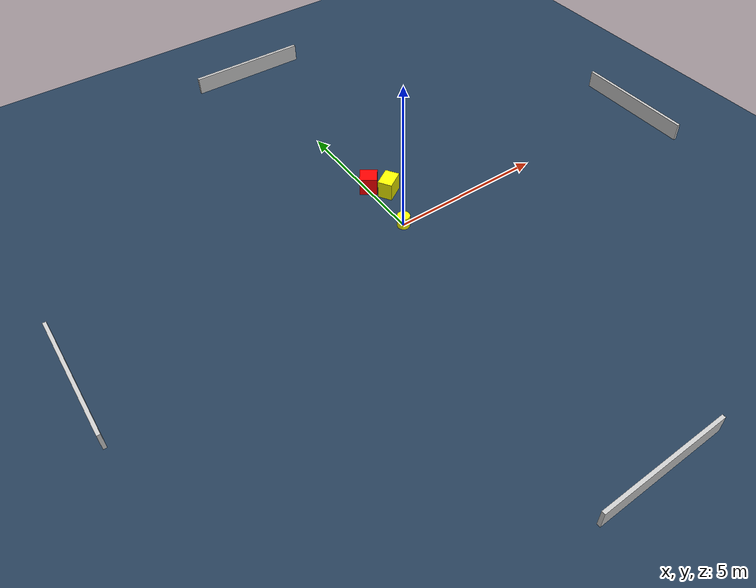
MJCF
<?xml version="1.0" ?>
<mujoco model="generated_environment">
  <option timestep="0.01" integrator="RK4" cone="elliptic"/>
  <default>
    <geom density="1"/>
  </default>
  <asset>
    <texture builtin="gradient" height="3072" name="skybox" rgb1="0.3 0.5 0.7" rgb2="0 0 0" type="skybox" width="512"/>
    <texture builtin="checker" height="300" name="groundplane" rgb1="0.2 0.3 0.4" rgb2="0.1 0.2 0.3" type="2d" width="300"/>
    <material name="groundplane" reflectance="0.2" texrepeat="5 5" texture="groundplane"/>
  </asset>
  <worldbody>
    <light dir="0 0 -1" directional="true" pos="0 0 1.5"/>
    <geom condim="3" friction="0.5 0.005 0.001" material="groundplane" name="floor" pos="0 0 0" size="0 0 0.05" type="plane"/>
    <body name="walls">
      <geom name="wall_1" condim="4" pos="-10.0 0.0 0.3" rgba="0.800000011920929 0.800000011920929 0.800000011920929 1.0" size="0.05 2.0 0.3" type="box"/>
      <geom name="wall_2" condim="4" pos="10.0 0.0 0.3" rgba="0.800000011920929 0.800000011920929 0.800000011920929 1.0" size="0.05 2.0 0.3" type="box"/>
      <geom name="wall_3" condim="4" pos="0.0 -10.0 0.3" rgba="0.800000011920929 0.800000011920929 0.800000011920929 1.0" size="2.0 0.05 0.3" type="box"/>
      <geom name="wall_4" condim="4" pos="0.0 10.0 0.3" rgba="0.800000011920929 0.800000011920929 0.800000011920929 1.0" size="2.0 0.05 0.3" type="box"/>
    </body>
    <body name="robot">
      <joint name="joint_x" type="slide" pos="0 0 0" axis="1 0 0"/>
      <joint name="joint_y" type="slide" pos="0 0 0" axis="0 1 0"/>
      <geom name="robot" type="cylinder" pos="0.0 0.0 0.2" size="0.2 0.2 0.0" mass="5.0" friction="1.0 0.005 0.0001" condim="4" rgba="1.0 1.0 0.0 1.0"/>
    </body>
    <body name="obstacle_1_movable">
      <geom name="obstacle_1_movable" condim="4" pos="0.4902496102821749 1.4848944507103745 0.3" euler="0 0 302.51607942688787" friction="0.0 0.005 0.001" rgba="1.0 1.0 0.0 1.0" size="0.2317383941454984 0.319124148508602 0.3" type="box" mass="0.1"/>
      <joint type="free"/>
    </body>
    <body name="obstacle_2_static">
      <geom name="obstacle_2_static" condim="4" pos="0.05789371484474034 1.968220594263196 0.3" euler="0 0 323.7302612493754" friction="0.0 0.005 0.001" rgba="1.0 0.0 0.0 1.0" size="0.27342462134819856 0.25326388347364726 0.3" type="box"/>
    </body>
  </worldbody>
  <actuator>
    <motor name="actuator_x" joint="joint_x" gear="1" ctrlrange="-1 1"/>
    <motor name="actuator_y" joint="joint_y" gear="1" ctrlrange="-1 1"/>
  </actuator>
</mujoco>
